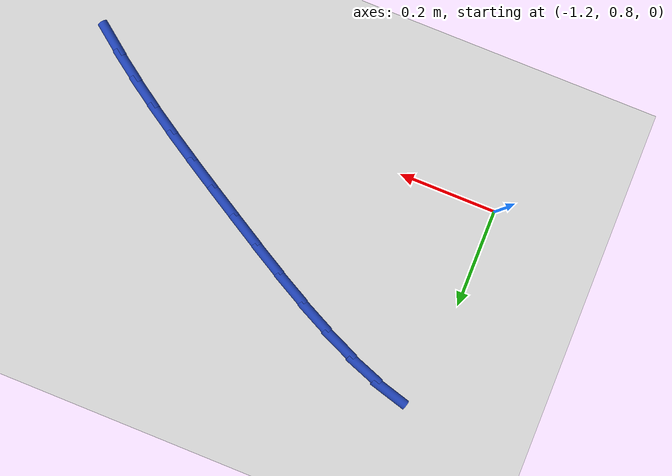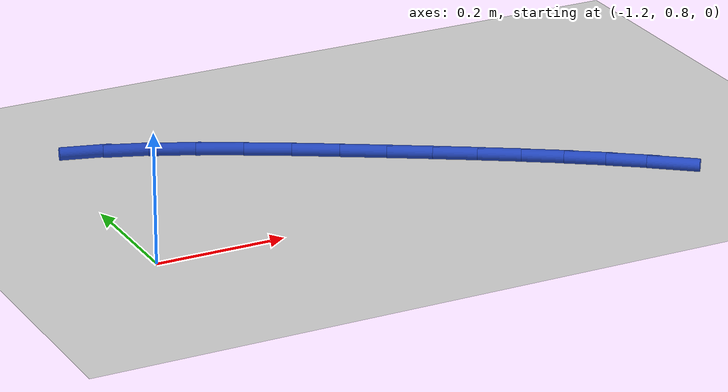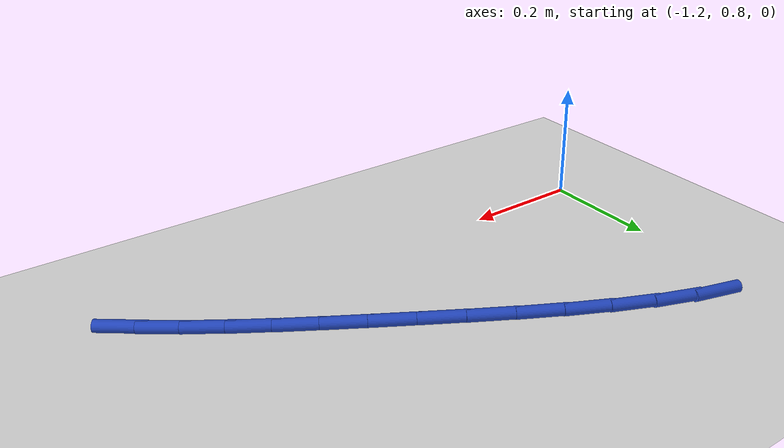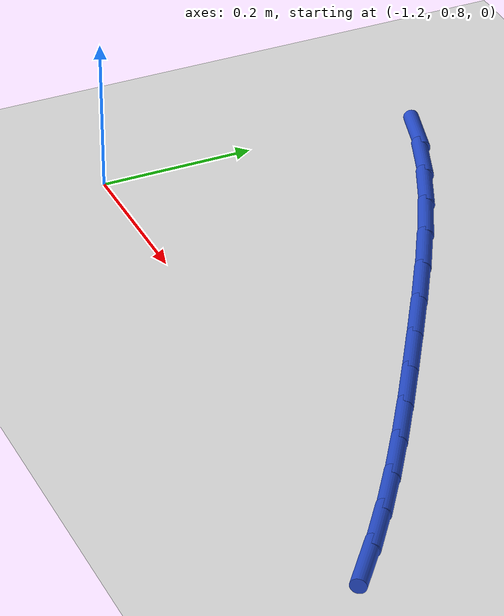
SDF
<sdf version="1.6">
 <world name="default">
  <model name="ground_plane">
   <static>1</static>
   <link name="link">
    <collision name="collision">
     <geometry><plane><normal>0 0 1</normal><size>100 100</size></plane></geometry>
     <surface><friction><ode><mu>100</mu><mu2>50</mu2></ode></friction></surface>
    </collision>
    <visual name="visual">
     <cast_shadows>0</cast_shadows>
     <geometry><plane><normal>0 0 1</normal><size>100 100</size></plane></geometry>
     <material>
      <script><uri>file://media/materials/scripts/gazebo.material</uri><name>Gazebo/WhiteGlow</name></script>
     </material>
    </visual>
   </link>
  </model>
  <model name="line">
   <link name="link_14">
    <pose>-0.3668455089381387 0.764157457125281 0.01 0 1.57 -0.6580247071605176</pose>
    <collision name="collision">
     <geometry><cylinder><radius>0.01</radius><length>0.08</length></cylinder></geometry>
    </collision>
    <visual name="visual">
     <material>
      <script><name>Gazebo/Blue</name><uri>file://media/materials/scripts/gazebo.material</uri></script>
     </material>
     <geometry><cylinder><radius>0.01</radius><length>0.08</length></cylinder></geometry>
    </visual>
   </link>
   <link name="link_15">
    <pose>-0.41602122662523594 0.8021675657626878 0.01 0 1.57 -0.6206087386189965</pose>
    <collision name="collision">
     <geometry><cylinder><radius>0.01</radius><length>0.08</length></cylinder></geometry>
    </collision>
    <visual name="visual">
     <material>
      <script><name>Gazebo/Blue</name><uri>file://media/materials/scripts/gazebo.material</uri></script>
     </material>
     <geometry><cylinder><radius>0.01</radius><length>0.08</length></cylinder></geometry>
    </visual>
   </link>
   <link name="link_16">
    <pose>-0.46756386415403967 0.8390117067948681 0.01 0 1.57 -0.5903239011585389</pose>
    <collision name="collision">
     <geometry><cylinder><radius>0.01</radius><length>0.08</length></cylinder></geometry>
    </collision>
    <visual name="visual">
     <material>
      <script><name>Gazebo/Blue</name><uri>file://media/materials/scripts/gazebo.material</uri></script>
     </material>
     <geometry><cylinder><radius>0.01</radius><length>0.08</length></cylinder></geometry>
    </visual>
   </link>
   <link name="link_17">
    <pose>-0.5213399900813729 0.8750430477739217 0.01 0 1.57 -0.5669092845456709</pose>
    <collision name="collision">
     <geometry><cylinder><radius>0.01</radius><length>0.08</length></cylinder></geometry>
    </collision>
    <visual name="visual">
     <material>
      <script><name>Gazebo/Blue</name><uri>file://media/materials/scripts/gazebo.material</uri></script>
     </material>
     <geometry><cylinder><radius>0.01</radius><length>0.08</length></cylinder></geometry>
    </visual>
   </link>
   <link name="link_18">
    <pose>-0.5772161729640588 0.9106147562519483 0.01 0 1.57 -0.5500190502977651</pose>
    <collision name="collision">
     <geometry><cylinder><radius>0.01</radius><length>0.08</length></cylinder></geometry>
    </collision>
    <visual name="visual">
     <material>
      <script><name>Gazebo/Blue</name><uri>file://media/materials/scripts/gazebo.material</uri></script>
     </material>
     <geometry><cylinder><radius>0.01</radius><length>0.08</length></cylinder></geometry>
    </visual>
   </link>
   <link name="link_19">
    <pose>-0.63505898135892 0.9460799997810473 0.01 0 1.57 -0.5392647327781457</pose>
    <collision name="collision">
     <geometry><cylinder><radius>0.01</radius><length>0.08</length></cylinder></geometry>
    </collision>
    <visual name="visual">
     <material>
      <script><name>Gazebo/Blue</name><uri>file://media/materials/scripts/gazebo.material</uri></script>
     </material>
     <geometry><cylinder><radius>0.01</radius><length>0.08</length></cylinder></geometry>
    </visual>
   </link>
   <link name="link_20">
    <pose>-0.6947349838227797 0.9817919459133185 0.01 0 1.57 -0.5341215957132147</pose>
    <collision name="collision">
     <geometry><cylinder><radius>0.01</radius><length>0.08</length></cylinder></geometry>
    </collision>
    <visual name="visual">
     <material>
      <script><name>Gazebo/Blue</name><uri>file://media/materials/scripts/gazebo.material</uri></script>
     </material>
     <geometry><cylinder><radius>0.01</radius><length>0.08</length></cylinder></geometry>
    </visual>
   </link>
   <link name="link_21">
    <pose>-0.7561076051722434 1.0180918249831286 0.01 0 1.57 -0.5286099432157211</pose>
    <collision name="collision">
     <geometry><cylinder><radius>0.01</radius><length>0.08</length></cylinder></geometry>
    </collision>
    <visual name="visual">
     <material>
      <script><name>Gazebo/Blue</name><uri>file://media/materials/scripts/gazebo.material</uri></script>
     </material>
     <geometry><cylinder><radius>0.01</radius><length>0.08</length></cylinder></geometry>
    </visual>
   </link>
   <link name="link_22">
    <pose>-0.8188930163954691 1.0547617241098235 0.01 0 1.57 -0.5147711135992885</pose>
    <collision name="collision">
     <geometry><cylinder><radius>0.01</radius><length>0.08</length></cylinder></geometry>
    </collision>
    <visual name="visual">
     <material>
      <script><name>Gazebo/Blue</name><uri>file://media/materials/scripts/gazebo.material</uri></script>
     </material>
     <geometry><cylinder><radius>0.01</radius><length>0.08</length></cylinder></geometry>
    </visual>
   </link>
   <link name="link_23">
    <pose>-0.8826002038507367 1.0907970216305538 0.01 0 1.57 -0.49163562137783534</pose>
    <collision name="collision">
     <geometry><cylinder><radius>0.01</radius><length>0.08</length></cylinder></geometry>
    </collision>
    <visual name="visual">
     <material>
      <script><name>Gazebo/Blue</name><uri>file://media/materials/scripts/gazebo.material</uri></script>
     </material>
     <geometry><cylinder><radius>0.01</radius><length>0.08</length></cylinder></geometry>
    </visual>
   </link>
   <link name="link_24">
    <pose>-0.9467225841985923 1.125133975580199 0.01 0 1.57 -0.45812730380656913</pose>
    <collision name="collision">
     <geometry><cylinder><radius>0.01</radius><length>0.08</length></cylinder></geometry>
    </collision>
    <visual name="visual">
     <material>
      <script><name>Gazebo/Blue</name><uri>file://media/materials/scripts/gazebo.material</uri></script>
     </material>
     <geometry><cylinder><radius>0.01</radius><length>0.08</length></cylinder></geometry>
    </visual>
   </link>
   <link name="link_25">
    <pose>-1.010753574099581 1.1567088439936362 0.01 0 1.57 -0.41237202007719703</pose>
    <collision name="collision">
     <geometry><cylinder><radius>0.01</radius><length>0.08</length></cylinder></geometry>
    </collision>
    <visual name="visual">
     <material>
      <script><name>Gazebo/Blue</name><uri>file://media/materials/scripts/gazebo.material</uri></script>
     </material>
     <geometry><cylinder><radius>0.01</radius><length>0.08</length></cylinder></geometry>
    </visual>
   </link>
   <link name="link_26">
    <pose>-1.0741865902142478 1.1844578849057452 0.01 0 1.57 -0.3515254491913706</pose>
    <collision name="collision">
     <geometry><cylinder><radius>0.01</radius><length>0.08</length></cylinder></geometry>
    </collision>
    <visual name="visual">
     <material>
      <script><name>Gazebo/Blue</name><uri>file://media/materials/scripts/gazebo.material</uri></script>
     </material>
     <geometry><cylinder><radius>0.01</radius><length>0.08</length></cylinder></geometry>
    </visual>
   </link>
   <link name="link_27">
    <pose>-1.136515049203138 1.2073173563514032 0.01 0 1.57 -0.2715619865538235</pose>
    <collision name="collision">
     <geometry><cylinder><radius>0.01</radius><length>0.08</length></cylinder></geometry>
    </collision>
    <visual name="visual">
     <material>
      <script><name>Gazebo/Blue</name><uri>file://media/materials/scripts/gazebo.material</uri></script>
     </material>
     <geometry><cylinder><radius>0.01</radius><length>0.08</length></cylinder></geometry>
    </visual>
   </link>
  </model>
 </world>
</sdf>
